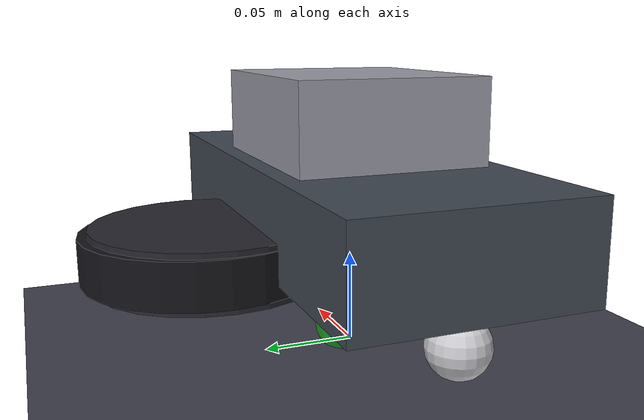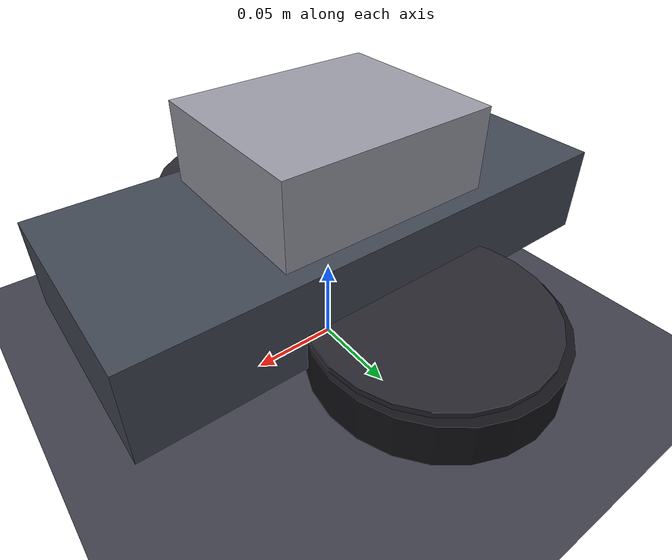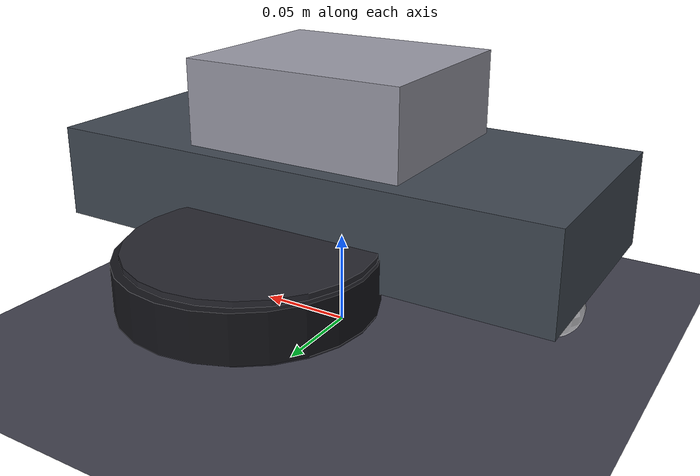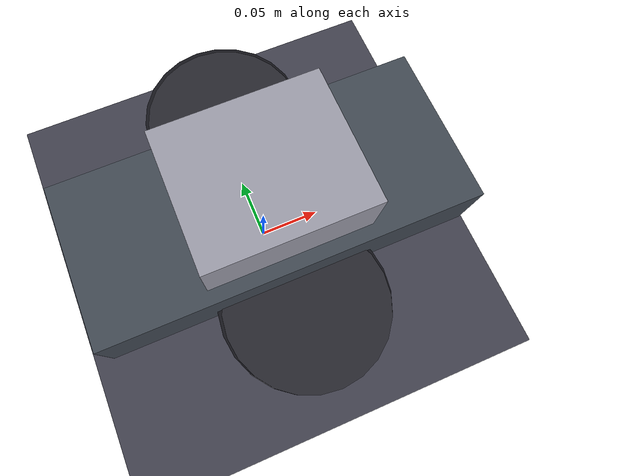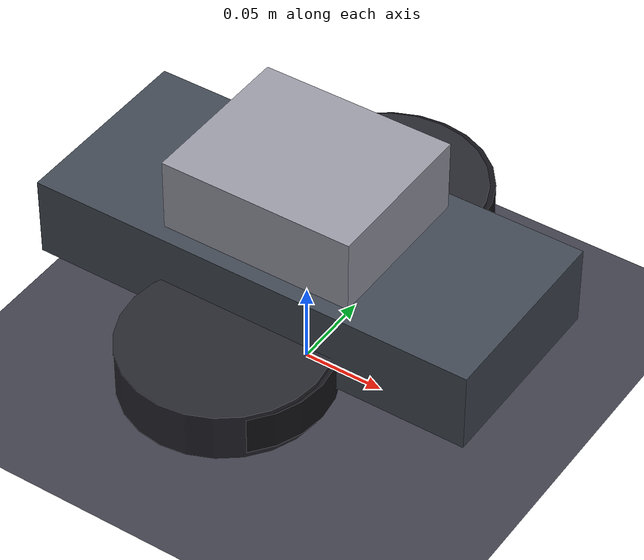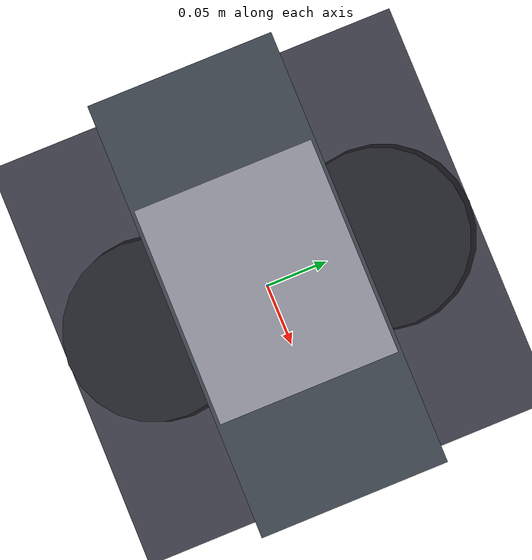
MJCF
<mujoco model="two_wheel_racer">
  <compiler angle="radian" meshdir="meshes"/>

  <option timestep="0.004" gravity="0 0 -9.81" integrator="RK4">
    <flag contact="enable" energy="enable"/>
  </option>

  <default>
    <geom friction="0.8 0.05 0.05" solref="0.02 1" solimp="0.9 0.95 0.001"/>
    <joint limited="true" damping="0.2" armature="0.01"/>
    <motor ctrlrange="-1 1" forcerange="-3.0 3.0"/>
    <default class="wheel">
      <geom type="cylinder" size="0.06 0.015" mass="0.05" rgba="0.15 0.15 0.18 1"/>
      <joint type="hinge" axis="0 1 0" range="-100 100" damping="0.1"/>
    </default>
    <default class="chassis">
      <geom type="box" rgba="0.20 0.22 0.24 1"/>
    </default>
  </default>

  <asset>
    <texture name="grid" type="2d" builtin="checker" width="512" height="512"
             rgb1="0.2 0.2 0.25" rgb2="0.3 0.3 0.35"/>
    <material name="grid_mat" texture="grid" texrepeat="10 10" reflectance="0.1"/>
    <material name="chassis_mat" rgba="0.25 0.28 0.32 1" specular="0.5" shininess="0.3"/>
  </asset>

  <worldbody>
    <!-- 地面 -->
    <geom name="ground" type="plane" size="50 50 0.1" material="grid_mat" friction="0.9 0.05 0.05"/>

    <!-- 跟踪摄像头 -->
    <camera name="track" mode="trackcom" pos="0 -0.5 0.25" xyaxes="1 0 0 0 0.4 0.9" fovy="45"/>

    <!-- 光照 -->
    <light name="light1" pos="5 5 10" diffuse="0.8 0.8 0.8" specular="0.3 0.3 0.3"/>
    <light name="light2" pos="-5 -3 5" diffuse="0.4 0.4 0.5"/>

    <!-- 机器人主体 -->
    <body name="chassis" pos="0 0 0.08">
      <!-- 6自由度自由体 -->
      <joint name="free_joint" type="free"/>

      <!-- 底盘主体 (铝型材风格) -->
      <geom name="chassis_geom" type="box" size="0.14 0.06 0.025" pos="0 0 0"
            mass="0.3" material="chassis_mat" friction="0.4 0.02 0.02"/>

      <!-- 顶部电子舱 -->
      <geom name="electronics_box" type="box" size="0.06 0.05 0.03" pos="0 0 0.04"
            mass="0.15" rgba="0.60 0.60 0.65 1"/>

      <!-- 惯性传感器 (IMU 模拟) -->
      <site name="imu" pos="0 0 0.06" size="0.01"/>

      <!-- 尾部支撑点 (passive, 防止后仰) -->
      <body name="tail_support" pos="-0.12 0 -0.03">
        <joint name="tail_hinge" type="hinge" axis="0 1 0" range="-0.5 0.5" damping="0.3"/>
        <geom name="tail_geom" type="sphere" size="0.015" pos="0 0 -0.01"
              mass="0.02" rgba="0.80 0.80 0.82 1" friction="0.3 0.01 0.01"/>
      </body>

      <!-- 左轮 (M3508 驱动) -->
      <body name="wheel_left" pos="0 0.08 -0.02">
        <joint name="axle_left" type="hinge" axis="0 1 0" range="-100 100" damping="0.15"/>
        <geom name="wheel_left_geom" type="cylinder" size="0.06 0.015" pos="0 0 0"
              mass="0.08" rgba="0.15 0.15 0.18 1" friction="1.2 0.08 0.08"/>
        <!-- 胎面纹理 -->
        <geom name="tread_left" type="cylinder" size="0.062 0.012" pos="0 0.003 0"
              mass="0.01" rgba="0.08 0.08 0.10 1" friction="1.5 0.1 0.1"/>
      </body>

      <!-- 右轮 (M3508 驱动) -->
      <body name="wheel_right" pos="0 -0.08 -0.02">
        <joint name="axle_right" type="hinge" axis="0 1 0" range="-100 100" damping="0.15"/>
        <geom name="wheel_right_geom" type="cylinder" size="0.06 0.015" pos="0 0 0"
              mass="0.08" rgba="0.15 0.15 0.18 1" friction="1.2 0.08 0.08"/>
        <geom name="tread_right" type="cylinder" size="0.062 0.012" pos="0 0.003 0"
              mass="0.01" rgba="0.08 0.08 0.10 1" friction="1.5 0.1 0.1"/>
      </body>

    </body>

    <!-- 起始位置标记 -->
    <site name="start_marker" pos="0 0 0.01" size="0.02" rgba="0 1 0 0.5"/>
  </worldbody>

  <actuator>
    <!-- 左电机 M3508: 额定扭矩 3N·m -->
    <motor name="motor_left" joint="axle_left" gear="1"
           ctrllimited="true" ctrlrange="-1 1"
           forcelimited="true" forcerange="-3.0 3.0"/>
    <!-- 右电机 M3508: 额定扭矩 3N·m -->
    <motor name="motor_right" joint="axle_right" gear="1"
           ctrllimited="true" ctrlrange="-1 1"
           forcelimited="true" forcerange="-3.0 3.0"/>
  </actuator>

  <sensor>
    <!-- IMU: 加速度计 + 陀螺仪 -->
    <framepos name="imu_pos" objtype="site" objname="imu"/>
    <framequat name="imu_quat" objtype="site" objname="imu"/>
    <framelinvel name="imu_linvel" objtype="site" objname="imu"/>
    <frameangvel name="imu_angvel" objtype="site" objname="imu"/>

    <!-- 左轮速度 -->
    <jointvel name="left_wheel_vel" joint="axle_left"/>
    <!-- 右轮速度 -->
    <jointvel name="right_wheel_vel" joint="axle_right"/>

    <!-- 左轮力矩 -->
    <actuatorfrc name="left_torque" actuator="motor_left"/>
    <!-- 右轮力矩 -->
    <actuatorfrc name="right_torque" actuator="motor_right"/>

    <!-- 底盘加速度 (用于碰撞检测) -->
    <accelerometer name="chassis_acc" site="imu"/>
  </sensor>

</mujoco>
